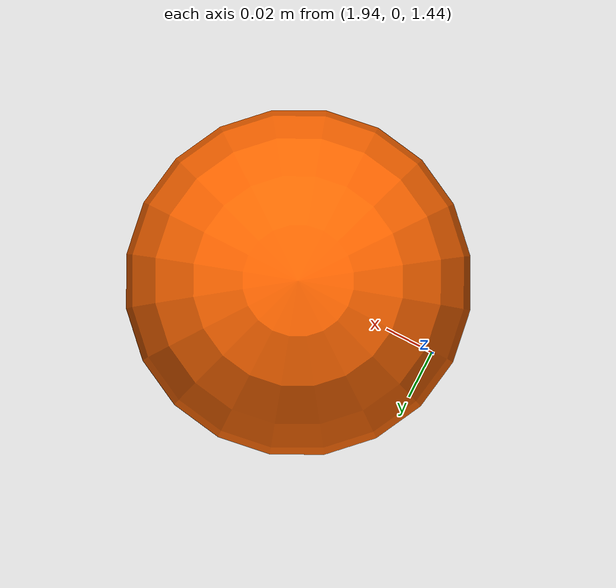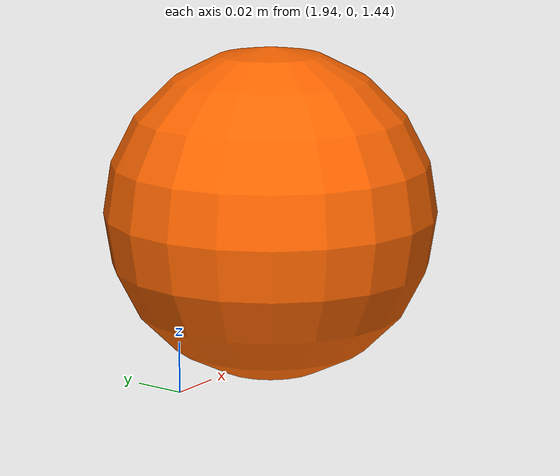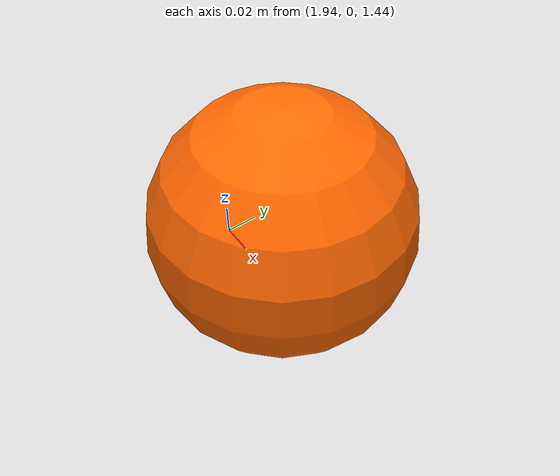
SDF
<?xml version="1.0" ?>
<sdf version="1.8">
  <world name="ball_world">

    <physics name="1ms" type="ignored">
      <max_step_size>0.001</max_step_size>
      <real_time_factor>0.5</real_time_factor>
    </physics>

    <plugin filename="gz-sim-physics-system"
            name="gz::sim::systems::Physics"/>
    <plugin filename="gz-sim-scene-broadcaster-system"
            name="gz::sim::systems::SceneBroadcaster"/>
    <plugin filename="gz-sim-user-commands-system"
            name="gz::sim::systems::UserCommands"/>
    <plugin filename="gz-sim-sensors-system"
            name="gz::sim::systems::Sensors">
      <render_engine>ogre2</render_engine>
    </plugin>

    <light name="sun" type="directional">
      <cast_shadows>true</cast_shadows>
      <pose>0 0 10 0 0 0</pose>
      <diffuse>0.8 0.8 0.8 1</diffuse>
      <specular>0.2 0.2 0.2 1</specular>
      <direction>-0.5 0.1 -0.9</direction>
    </light>

    <model name="ground_plane">
      <static>true</static>
      <link name="link">
        <collision name="collision">
          <geometry>
            <plane>
              <normal>0 0 1</normal>
              <size>100 100</size>
            </plane>
          </geometry>
          <surface>
            <contact>
              <collide_bitmask>0x02</collide_bitmask>
            </contact>
          </surface>
        </collision>
        <visual name="visual">
          <geometry>
            <plane>
              <normal>0 0 1</normal>
              <size>100 100</size>
            </plane>
          </geometry>
          <material>
            <ambient>0.8 0.8 0.8 1</ambient>
          </material>
        </visual>
      </link>
    </model>

    <model name="ball">
      <pose>2.0 0 1.5 0 0 0</pose>
      <link name="ball_link">
        <inertial>
          <mass>0.15</mass>
          <inertia>
            <ixx>0.000360</ixx>
            <iyy>0.000360</iyy>
            <izz>0.000360</izz>
          </inertia>
        </inertial>
        <collision name="collision">
          <geometry>
            <sphere><radius>0.067</radius></sphere>
          </geometry>
          <surface>
            <bounce>
              <restitution_coefficient>0.7</restitution_coefficient>
            </bounce>
            <friction>
              <ode>
                <mu>0.5</mu>
                <mu2>0.5</mu2>
              </ode>
            </friction>
            <contact>
              <collide_bitmask>0x03</collide_bitmask>
            </contact>
          </surface>
        </collision>
        <visual name="visual">
          <geometry>
            <sphere><radius>0.067</radius></sphere>
          </geometry>
          <material>
            <ambient>1.0 0.4 0.0 1</ambient>
            <diffuse>1.0 0.4 0.0 1</diffuse>
          </material>
        </visual>
      </link>
    </model>

  </world>
</sdf>
